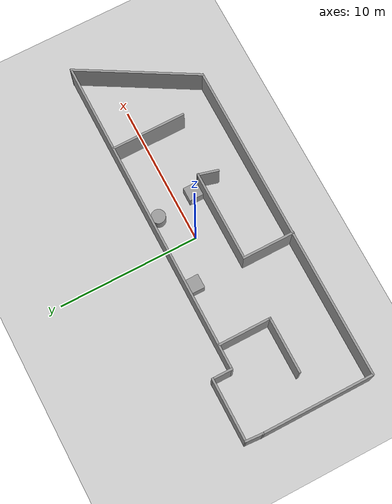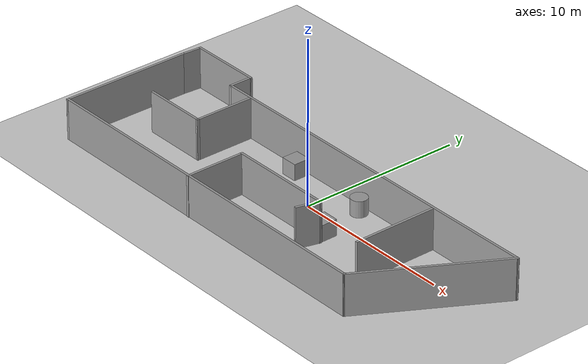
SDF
<sdf version="1.7">
 <world name="default">
  <light name="sun" type="directional">
   <pose>0 0 10 0 -0 0</pose>
   <diffuse>0.8 0.8 0.8 1</diffuse>
   <specular>0.2 0.2 0.2 1</specular>
   <attenuation>
    <range>1000</range>
    <constant>0.9</constant>
    <linear>0.01</linear>
    <quadratic>0.001</quadratic>
   </attenuation>
   <direction>-0.5 0.1 -0.9</direction>
   <spot><inner_angle>0</inner_angle><outer_angle>0</outer_angle><falloff>0</falloff></spot>
  </light>
  <model name="ground_plane">
   <static>1</static>
   <link name="link">
    <collision name="collision">
     <geometry><plane><normal>0 0 1</normal><size>100 100</size></plane></geometry>
     <surface>
      <contact><collide_bitmask>65535</collide_bitmask></contact>
      <friction><ode><mu>100</mu><mu2>50</mu2></ode></friction>
     </surface>
    </collision>
    <visual name="visual">
     <cast_shadows>0</cast_shadows>
     <geometry><plane><normal>0 0 1</normal><size>100 100</size></plane></geometry>
     <material>
      <script><uri>file://media/materials/scripts/gazebo.material</uri><name>Gazebo/Grey</name></script>
     </material>
    </visual>
   </link>
  </model>
  <gravity>0 0 -9.8</gravity>
  <magnetic_field>6e-06 2.3e-05 -4.2e-05</magnetic_field>
  <atmosphere type="adiabatic"/>
  <physics type="ode">
   <max_step_size>0.001</max_step_size>
   <real_time_factor>1</real_time_factor>
   <real_time_update_rate>1000</real_time_update_rate>
  </physics>
  <scene><ambient>0.4 0.4 0.4 1</ambient><background>0.7 0.7 0.7 1</background><shadows>1</shadows></scene>
  <spherical_coordinates>
   <surface_model>EARTH_WGS84</surface_model>
   <latitude_deg>0</latitude_deg>
   <longitude_deg>0</longitude_deg>
   <elevation>0</elevation>
   <heading_deg>0</heading_deg>
  </spherical_coordinates>
  <model name="firstsets.model">
   <pose>0.073527 -0.914734 0 0 -0 0</pose>
   <link name="Wall_11">
    <collision name="Wall_11_Collision">
     <geometry><box><size>3.75 0.15 2.5</size></box></geometry>
     <pose>0 0 1.25 0 -0 0</pose>
    </collision>
    <visual name="Wall_11_Visual">
     <pose>0 0 1.25 0 -0 0</pose>
     <geometry><box><size>3.75 0.15 2.5</size></box></geometry>
     <material>
      <script><uri>file://media/materials/scripts/gazebo.material</uri><name>Gazebo/Grey</name></script>
      <ambient>1 1 1 1</ambient>
     </material>
     <meta><layer>0</layer></meta>
    </visual>
    <pose>-7.50808 1.29225 0 0 -0 -1.5708</pose>
   </link>
   <link name="Wall_12">
    <collision name="Wall_12_Collision">
     <geometry><box><size>4 0.15 2.5</size></box></geometry>
     <pose>0 0 1.25 0 -0 0</pose>
    </collision>
    <visual name="Wall_12_Visual">
     <pose>0 0 1.25 0 -0 0</pose>
     <geometry><box><size>4 0.15 2.5</size></box></geometry>
     <material>
      <script><uri>file://media/materials/scripts/gazebo.material</uri><name>Gazebo/Grey</name></script>
      <ambient>1 1 1 1</ambient>
     </material>
     <meta><layer>0</layer></meta>
    </visual>
    <pose>-9.43308 -0.50775 0 0 -0 3.14159</pose>
   </link>
   <link name="Wall_14">
    <collision name="Wall_14_Collision">
     <geometry><box><size>3.75 0.15 2.5</size></box></geometry>
     <pose>0 0 1.25 0 -0 0</pose>
    </collision>
    <visual name="Wall_14_Visual">
     <pose>0 0 1.25 0 -0 0</pose>
     <geometry><box><size>3.75 0.15 2.5</size></box></geometry>
     <material>
      <script><uri>file://media/materials/scripts/gazebo.material</uri><name>Gazebo/Grey</name></script>
      <ambient>1 1 1 1</ambient>
     </material>
     <meta><layer>0</layer></meta>
    </visual>
    <pose>-3.2594 -2.72469 0 0 -0 1.5708</pose>
   </link>
   <link name="Wall_15">
    <collision name="Wall_15_Collision">
     <geometry><box><size>6.5 0.15 2.5</size></box></geometry>
     <pose>0 0 1.25 0 -0 0</pose>
    </collision>
    <visual name="Wall_15_Visual">
     <pose>0 0 1.25 0 -0 0</pose>
     <geometry><box><size>6.5 0.15 2.5</size></box></geometry>
     <material>
      <script><uri>file://media/materials/scripts/gazebo.material</uri><name>Gazebo/Grey</name></script>
      <ambient>1 1 1 1</ambient>
     </material>
     <meta><layer>0</layer></meta>
    </visual>
    <pose>-0.084395 -0.924688 0 0 -0 0</pose>
   </link>
   <link name="Wall_16">
    <collision name="Wall_16_Collision">
     <geometry><box><size>1.5 0.15 2.5</size></box></geometry>
     <pose>0 0 1.25 0 -0 0</pose>
    </collision>
    <visual name="Wall_16_Visual">
     <pose>0 0 1.25 0 -0 0</pose>
     <geometry><box><size>1.5 0.15 2.5</size></box></geometry>
     <material>
      <script><uri>file://media/materials/scripts/gazebo.material</uri><name>Gazebo/Grey</name></script>
      <ambient>1 1 1 1</ambient>
     </material>
     <meta><layer>0</layer></meta>
    </visual>
    <pose>2.9159 -1.57669 0 0 -0 -1.8326</pose>
   </link>
   <link name="Wall_18">
    <collision name="Wall_18_Collision">
     <geometry><box><size>5.25 0.15 2.5</size></box></geometry>
     <pose>0 0 1.25 0 -0 0</pose>
    </collision>
    <visual name="Wall_18_Visual">
     <pose>0 0 1.25 0 -0 0</pose>
     <geometry><box><size>5.25 0.15 2.5</size></box></geometry>
     <material>
      <script><uri>file://media/materials/scripts/gazebo.material</uri><name>Gazebo/Grey</name></script>
      <ambient>1 1 1 1</ambient>
     </material>
     <meta><layer>0</layer></meta>
    </visual>
    <pose>7.30153 0.555234 0 0 -0 -1.5708</pose>
   </link>
   <link name="Wall_3">
    <collision name="Wall_3_Collision">
     <geometry><box><size>8 0.15 2.5</size></box></geometry>
     <pose>0 0 1.25 0 -0 0</pose>
    </collision>
    <visual name="Wall_3_Visual">
     <pose>0 0 1.25 0 -0 0</pose>
     <geometry><box><size>8 0.15 2.5</size></box></geometry>
     <material>
      <script><uri>file://media/materials/scripts/gazebo.material</uri><name>Gazebo/Grey</name></script>
      <ambient>1 1 1 1</ambient>
     </material>
     <meta><layer>0</layer></meta>
    </visual>
    <pose>-13.6489 -0.569302 0 0 -0 -1.5708</pose>
   </link>
   <link name="Wall_4">
    <collision name="Wall_4_Collision">
     <geometry><box><size>23 0.15 2.5</size></box></geometry>
     <pose>0 0 1.25 0 -0 0</pose>
    </collision>
    <visual name="Wall_4_Visual">
     <pose>0 0 1.25 0 -0 0</pose>
     <geometry><box><size>23 0.15 2.5</size></box></geometry>
     <material>
      <script><uri>file://media/materials/scripts/gazebo.material</uri><name>Gazebo/Grey</name></script>
      <ambient>1 1 1 1</ambient>
     </material>
     <meta><layer>0</layer></meta>
    </visual>
    <pose>-2.22389 -4.4943 0 0 -0 0</pose>
   </link>
   <link name="Wall_5">
    <collision name="Wall_5_Collision">
     <geometry><box><size>9 0.15 2.5</size></box></geometry>
     <pose>0 0 1.25 0 -0 0</pose>
    </collision>
    <visual name="Wall_5_Visual">
     <pose>0 0 1.25 0 -0 0</pose>
     <geometry><box><size>9 0.15 2.5</size></box></geometry>
     <material>
      <script><uri>file://media/materials/scripts/gazebo.material</uri><name>Gazebo/Grey</name></script>
      <ambient>1 1 1 1</ambient>
     </material>
     <meta><layer>0</layer></meta>
    </visual>
    <pose>11.4136 -0.66214 0 0 -0 1.0472</pose>
   </link>
   <link name="Wall_6">
    <collision name="Wall_6_Collision">
     <geometry><box><size>23 0.15 2.5</size></box></geometry>
     <pose>0 0 1.25 0 -0 0</pose>
    </collision>
    <visual name="Wall_6_Visual">
     <pose>0 0 1.25 0 -0 0</pose>
     <geometry><box><size>23 0.15 2.5</size></box></geometry>
     <material>
      <script><uri>file://media/materials/scripts/gazebo.material</uri><name>Gazebo/Grey</name></script>
      <ambient>1 1 1 1</ambient>
     </material>
     <meta><layer>0</layer></meta>
    </visual>
    <pose>2.20111 3.17002 0 0 -0 3.14159</pose>
   </link>
   <link name="Wall_7">
    <collision name="Wall_7_Collision">
     <geometry><box><size>1.5 0.15 2.5</size></box></geometry>
     <pose>0 0 1.25 0 -0 0</pose>
    </collision>
    <visual name="Wall_7_Visual">
     <pose>0 0 1.25 0 -0 0</pose>
     <geometry><box><size>1.5 0.15 2.5</size></box></geometry>
     <material>
      <script><uri>file://media/materials/scripts/gazebo.material</uri><name>Gazebo/Grey</name></script>
      <ambient>1 1 1 1</ambient>
     </material>
     <meta><layer>0</layer></meta>
    </visual>
    <pose>-9.22389 3.84502 0 0 -0 1.5708</pose>
   </link>
   <link name="Wall_8">
    <collision name="Wall_8_Collision">
     <geometry><box><size>4.5 0.15 2.5</size></box></geometry>
     <pose>0 0 1.25 0 -0 0</pose>
    </collision>
    <visual name="Wall_8_Visual">
     <pose>0 0 1.25 0 -0 0</pose>
     <geometry><box><size>4.5 0.15 2.5</size></box></geometry>
     <material>
      <script><uri>file://media/materials/scripts/gazebo.material</uri><name>Gazebo/Grey</name></script>
      <ambient>1 1 1 1</ambient>
     </material>
     <meta><layer>0</layer></meta>
    </visual>
    <pose>-11.3989 4.52002 0 0 -0 3.14159</pose>
   </link>
   <link name="Wall_9">
    <collision name="Wall_9_Collision">
     <geometry><box><size>1.31674 0.15 2.5</size></box></geometry>
     <pose>0 0 1.25 0 -0 0</pose>
    </collision>
    <visual name="Wall_9_Visual">
     <pose>0 0 1.25 0 -0 0</pose>
     <geometry><box><size>1.31674 0.15 2.5</size></box></geometry>
     <material>
      <script><uri>file://media/materials/scripts/gazebo.material</uri><name>Gazebo/Grey</name></script>
      <ambient>1 1 1 1</ambient>
     </material>
     <meta><layer>0</layer></meta>
    </visual>
    <pose>-13.6114 3.93786 0 0 -0 -1.63512</pose>
   </link>
   <static>1</static>
  </model>
  <model name="unit_box">
   <pose>-2.93161 1.6273 0.499995 0 1e-05 0</pose>
   <link name="link">
    <inertial>
     <mass>1</mass>
     <inertia>
      <ixx>0.166667</ixx>
      <ixy>0</ixy>
      <ixz>0</ixz>
      <iyy>0.166667</iyy>
      <iyz>0</iyz>
      <izz>0.166667</izz>
     </inertia>
    </inertial>
    <collision name="collision"><geometry><box><size>1 1 1</size></box></geometry></collision>
    <visual name="visual">
     <geometry><box><size>1 1 1</size></box></geometry>
     <material>
      <script><name>Gazebo/Grey</name><uri>file://media/materials/scripts/gazebo.material</uri></script>
     </material>
    </visual>
   </link>
  </model>
  <model name="unit_box_0">
   <pose>2.71093 -1.2335 0.499995 -1e-05 -0 0</pose>
   <link name="link">
    <inertial>
     <mass>1</mass>
     <inertia>
      <ixx>0.166667</ixx>
      <ixy>0</ixy>
      <ixz>0</ixz>
      <iyy>0.166667</iyy>
      <iyz>0</iyz>
      <izz>0.166667</izz>
     </inertia>
    </inertial>
    <collision name="collision"><geometry><box><size>1 1 1</size></box></geometry></collision>
    <visual name="visual">
     <geometry><box><size>1 1 1</size></box></geometry>
     <material>
      <script><name>Gazebo/Grey</name><uri>file://media/materials/scripts/gazebo.material</uri></script>
     </material>
    </visual>
   </link>
  </model>
  <model name="unit_cylinder">
   <pose>2.24967 1.60999 0.499997 3e-06 4e-06 -0</pose>
   <link name="link">
    <inertial>
     <mass>1</mass>
     <inertia><ixx>0.145833</ixx><ixy>0</ixy><ixz>0</ixz><iyy>0.145833</iyy><iyz>0</iyz><izz>0.125</izz></inertia>
    </inertial>
    <collision name="collision">
     <geometry><cylinder><radius>0.5</radius><length>1</length></cylinder></geometry>
    </collision>
    <visual name="visual">
     <geometry><cylinder><radius>0.5</radius><length>1</length></cylinder></geometry>
     <material>
      <script><name>Gazebo/Grey</name><uri>file://media/materials/scripts/gazebo.material</uri></script>
     </material>
    </visual>
   </link>
  </model>
 </world>
</sdf>
